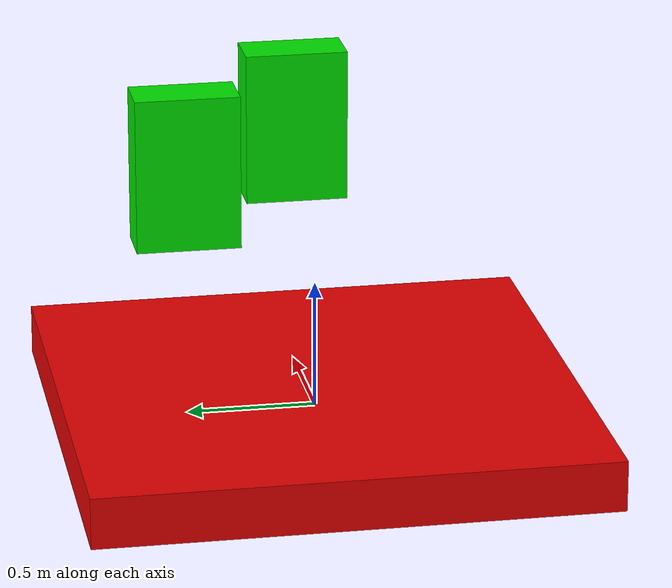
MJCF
<mujoco>
    <worldbody>
        <light name="light0" diffuse=".5 .5 .5" pos="0 0 3" dir="0 0 -1"/>
        <geom name="geom0" type="box" size="1 1 0.1" rgba=".9 0 0 1"/>
        <body name="body1" pos="0.0 0.5 1">
            <joint name="joint0" type="free"/>
            <geom name="geom1" type="box" size=".1 .2 .3" rgba="0 .9 0 1"/>
        </body>
        <body name="body2" pos="0.5 0 1">
            <joint name="joint1" type="free"/>
            <geom name="geom2" type="box" size=".1 .2 .3" rgba="0 .9 0 1"/>
        </body>
    </worldbody>
</mujoco>
